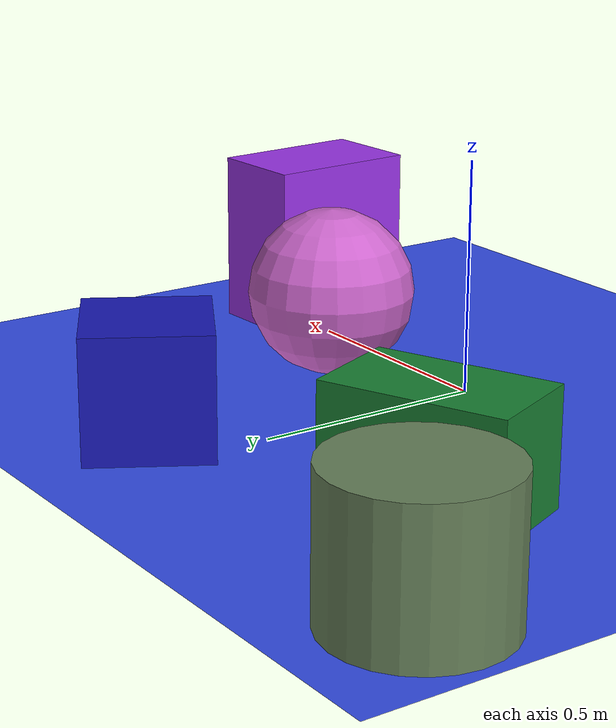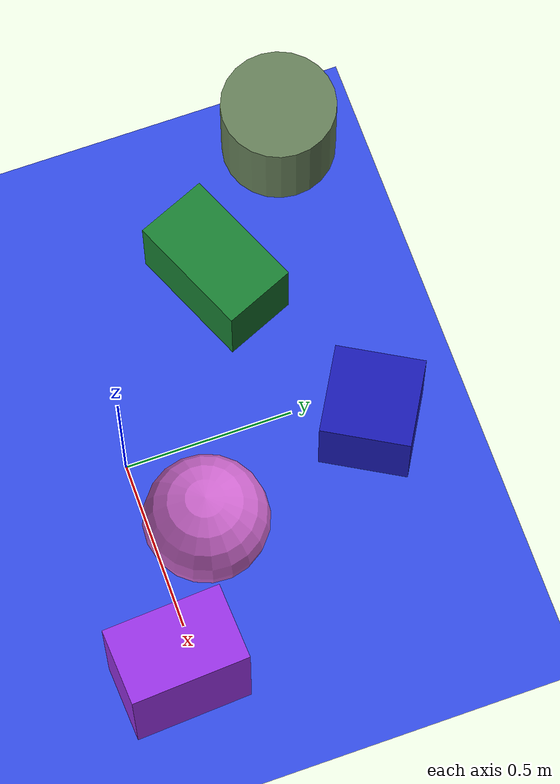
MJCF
<mujoco>
   <asset>
<texture type="skybox" builtin="gradient" rgb1="0.0 0.1 0.7" rgb2="0.5 0.7 0.5" width="500" height="500"/>
<texture name="flat_0" builtin="flat" rgb1="0.6 0.2 0.9" rgb2="0.6 0.2 0.9"  width="500" height="500"/>
<texture name="flat_1" builtin="flat" rgb1="0.1 0.5 0.2" rgb2="0.1 0.5 0.2"  width="500" height="500"/>
<texture name="checker_2" builtin="checker" rgb1="0.2 0.4 0.7" rgb2="0.6 0.6 0.0" width="500" height="500"/>
<texture name="flat_3" builtin="flat" rgb1="0.1 0.1 0.7" rgb2="0.1 0.1 0.7"  width="500" height="500"/>
<texture name="gradient_4" builtin="gradient" rgb1="0.7 0.5 0.8" rgb2="0.9 0.3 0.8" width="500" height="500"/><material name="flat_0_mat" reflectance="0.8967152559743409" texture="flat_0" texuniform="true"/>
<material name="flat_1_mat" reflectance="0.23905058222516562" texture="flat_1" texuniform="true"/>
<material name="checker_2_mat" reflectance="0.3335740108881231" texrepeat="7 7" texture="checker_2" texuniform="false" />
<material name="flat_3_mat" reflectance="0.5398368907746122" texture="flat_3" texuniform="true"/>
<material name="gradient_4_mat" reflectance="0.08209403723118402" texture="gradient_4" texuniform="true"/>
   </asset>

   <worldbody>
     <geom type="plane" size="1 1 0.1" rgba="0.2 0.3 0.9 1" />
<light pos="0.5307392420020591 0.5992028340274616 2" dir="0 0 -1" cutoff="90" diffuse="1 1 1" specular="1 1 1"/>
<geom type="box" pos="0.65 -0.06 0.19" size="0.11 0.17 0.19" material="flat_0_mat" euler="0 0 3" />
<geom type="box" pos="-0.45 0.43 0.12" size="0.19 0.11 0.12" material="flat_1_mat" euler="0 0 23" />
<geom type="cylinder" pos="-0.81 0.75 0.14" size="0.17 0.14 0.14" material="checker_2_mat" euler="0 0 58" />
<geom type="box" pos="0.12 0.7 0.13" size="0.13 0.13 0.13" material="flat_3_mat" euler="0 0 60" />
<geom type="sphere" pos="0.28 0.15 0.18" size="0.18 0.18 0.18" material="gradient_4_mat" euler="0 0 23" /><camera euler="60 0 180" fovy="60" name="camera1" pos="-0.2 -1.5 1"></camera>   </worldbody>
   <visual>
      <headlight diffuse="0.7 0.7 0.7"/>
   </visual>
</mujoco>
